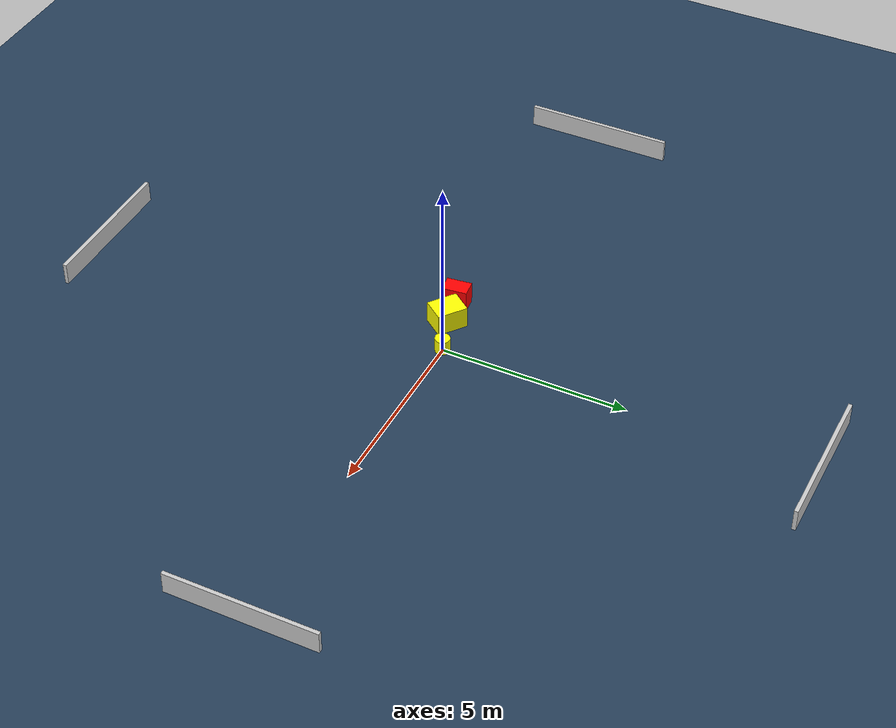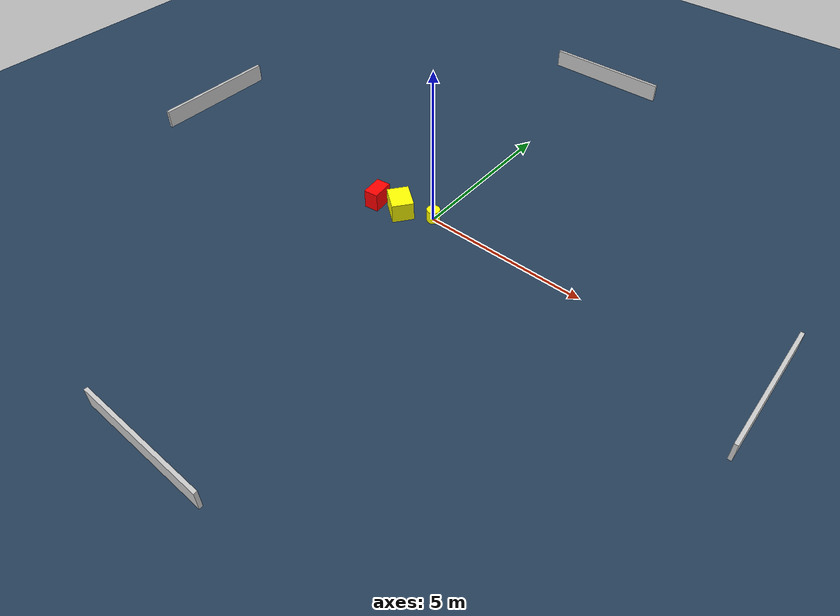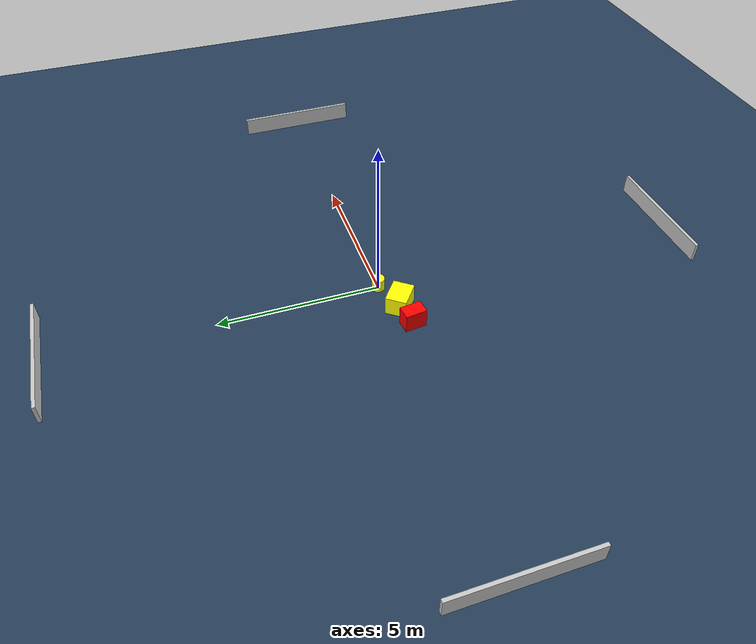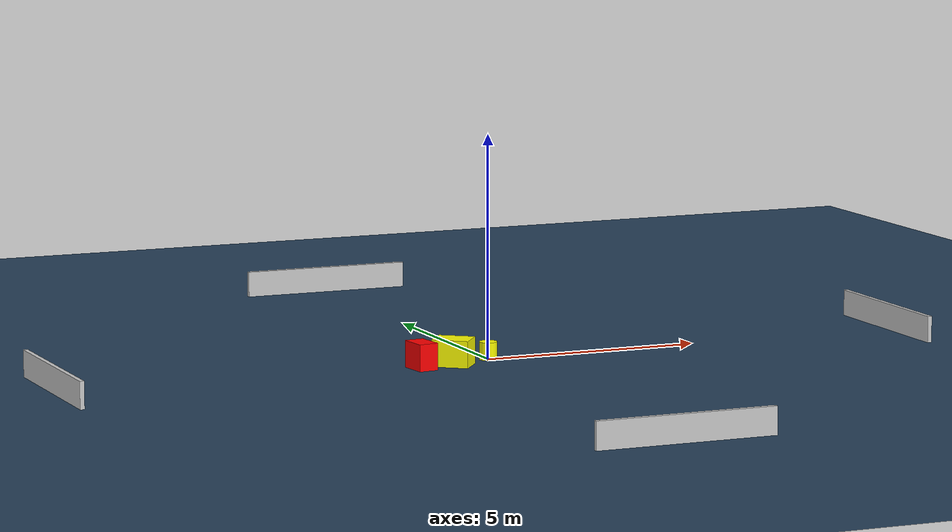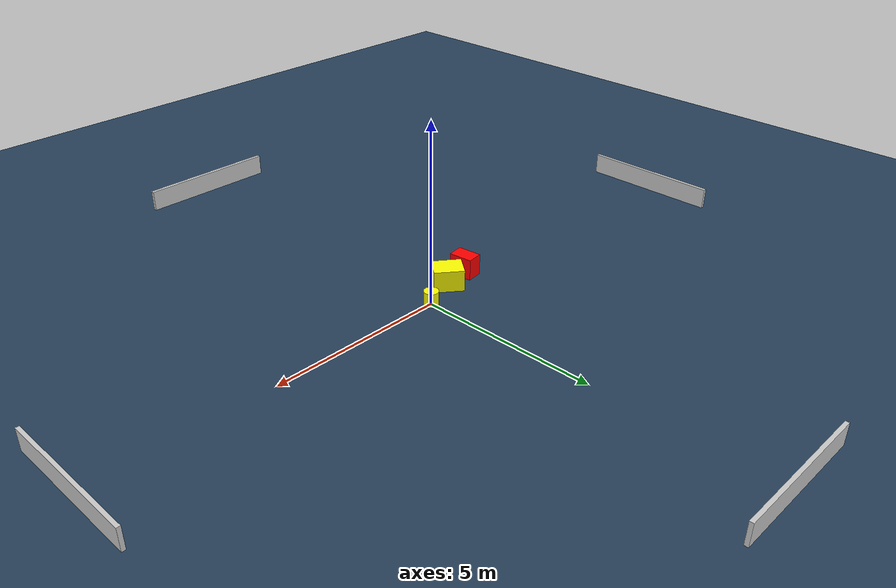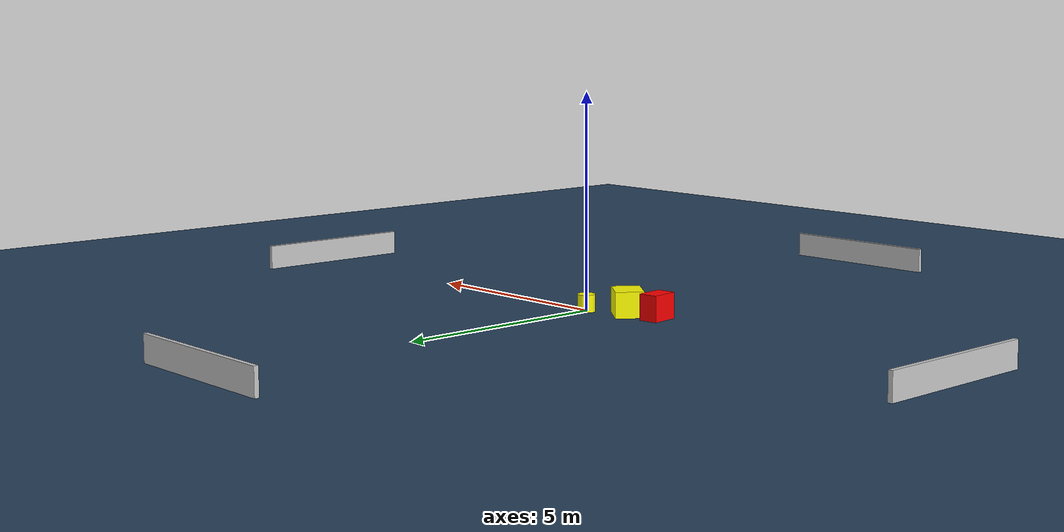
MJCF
<?xml version="1.0" ?>
<mujoco model="generated_environment">
  <option timestep="0.01" integrator="RK4" cone="elliptic"/>
  <default>
    <geom density="1"/>
  </default>
  <asset>
    <texture builtin="gradient" height="3072" name="skybox" rgb1="0.3 0.5 0.7" rgb2="0 0 0" type="skybox" width="512"/>
    <texture builtin="checker" height="300" name="groundplane" rgb1="0.2 0.3 0.4" rgb2="0.1 0.2 0.3" type="2d" width="300"/>
    <material name="groundplane" reflectance="0.2" texrepeat="5 5" texture="groundplane"/>
  </asset>
  <worldbody>
    <light dir="0 0 -1" directional="true" pos="0 0 1.5"/>
    <geom condim="3" friction="0.5 0.005 0.001" material="groundplane" name="floor" pos="0 0 0" size="0 0 0.05" type="plane"/>
    <body name="walls">
      <geom name="wall_1" condim="4" pos="-10.0 0.0 0.3" rgba="0.800000011920929 0.800000011920929 0.800000011920929 1.0" size="0.05 2.0 0.3" type="box"/>
      <geom name="wall_2" condim="4" pos="10.0 0.0 0.3" rgba="0.800000011920929 0.800000011920929 0.800000011920929 1.0" size="0.05 2.0 0.3" type="box"/>
      <geom name="wall_3" condim="4" pos="0.0 -10.0 0.3" rgba="0.800000011920929 0.800000011920929 0.800000011920929 1.0" size="2.0 0.05 0.3" type="box"/>
      <geom name="wall_4" condim="4" pos="0.0 10.0 0.3" rgba="0.800000011920929 0.800000011920929 0.800000011920929 1.0" size="2.0 0.05 0.3" type="box"/>
    </body>
    <body name="robot">
      <joint name="joint_x" type="slide" pos="0 0 0" axis="1 0 0"/>
      <joint name="joint_y" type="slide" pos="0 0 0" axis="0 1 0"/>
      <geom name="robot" type="cylinder" pos="0.0 0.0 0.2" size="0.2 0.2 0.0" mass="5.0" friction="1.0 0.005 0.0001" condim="4" rgba="1.0 1.0 0.0 1.0"/>
    </body>
    <body name="obstacle_1_movable">
      <geom name="obstacle_1_movable" condim="4" pos="-0.9786513582392585 -0.35075992117229177 0.3" euler="0 0 52.46351913920232" friction="0.0 0.005 0.001" rgba="1.0 1.0 0.0 1.0" size="0.3275456020458587 0.4113986748807348 0.3" type="box" mass="0.1"/>
      <joint type="free"/>
    </body>
    <body name="obstacle_2_static">
      <geom name="obstacle_2_static" condim="4" pos="-1.787103886924176 -0.4738742125953289 0.3" euler="0 0 276.7691925052345" friction="0.0 0.005 0.001" rgba="1.0 0.0 0.0 1.0" size="0.3336634956061427 0.22244488344876245 0.3" type="box"/>
    </body>
  </worldbody>
  <actuator>
    <motor name="actuator_x" joint="joint_x" gear="1" ctrlrange="-1 1"/>
    <motor name="actuator_y" joint="joint_y" gear="1" ctrlrange="-1 1"/>
  </actuator>
</mujoco>
